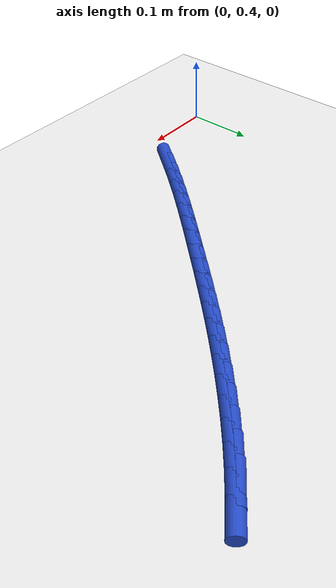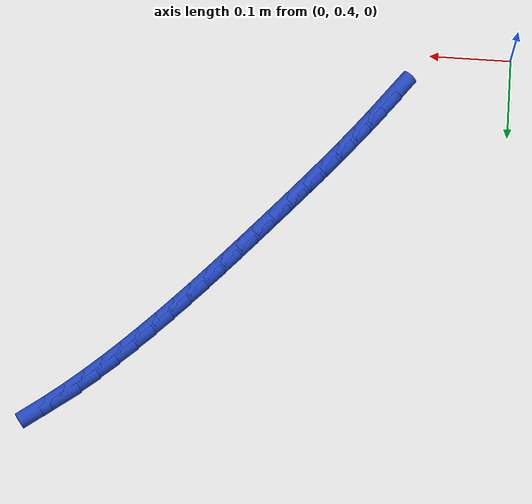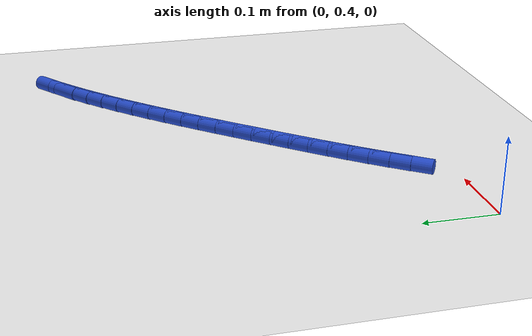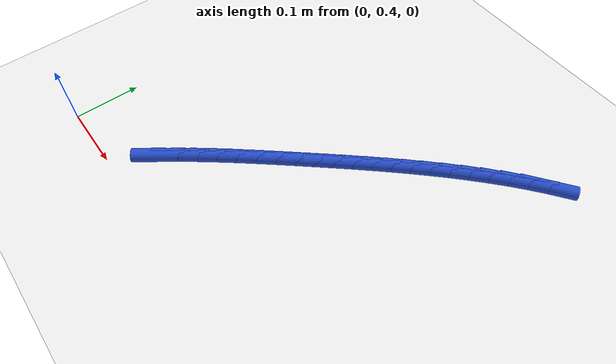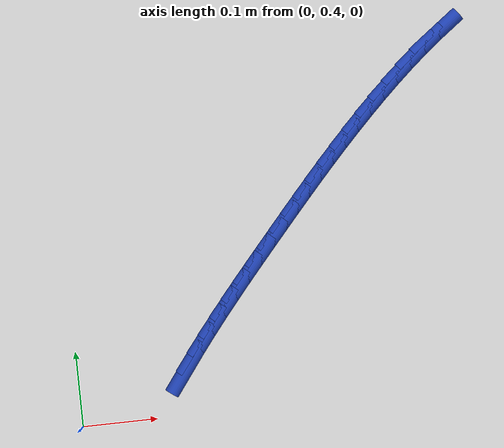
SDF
<sdf version="1.6">
 <world name="default">
  <model name="ground_plane">
   <static>1</static>
   <link name="link">
    <collision name="collision">
     <geometry><plane><normal>0 0 1</normal><size>100 100</size></plane></geometry>
     <surface><friction><ode><mu>100</mu><mu2>50</mu2></ode></friction></surface>
    </collision>
    <visual name="visual">
     <cast_shadows>0</cast_shadows>
     <geometry><plane><normal>0 0 1</normal><size>100 100</size></plane></geometry>
     <material>
      <script><uri>file://media/materials/scripts/gazebo.material</uri><name>Gazebo/WhiteGlow</name></script>
     </material>
    </visual>
   </link>
  </model>
  <model name="line">
   <link name="link_18">
    <pose>0.14657801516946348 0.4642527510648569 0.01 0 1.57 0.9306011984447259</pose>
    <collision name="collision">
     <geometry><cylinder><radius>0.01</radius><length>0.08</length></cylinder></geometry>
    </collision>
    <visual name="visual">
     <material>
      <script><name>Gazebo/Blue</name><uri>file://media/materials/scripts/gazebo.material</uri></script>
     </material>
     <geometry><cylinder><radius>0.01</radius><length>0.08</length></cylinder></geometry>
    </visual>
   </link>
   <link name="link_19">
    <pose>0.1633071607113373 0.4867125876180554 0.01 0 1.57 0.9112471377221855</pose>
    <collision name="collision">
     <geometry><cylinder><radius>0.01</radius><length>0.08</length></cylinder></geometry>
    </collision>
    <visual name="visual">
     <material>
      <script><name>Gazebo/Blue</name><uri>file://media/materials/scripts/gazebo.material</uri></script>
     </material>
     <geometry><cylinder><radius>0.01</radius><length>0.08</length></cylinder></geometry>
    </visual>
   </link>
   <link name="link_20">
    <pose>0.18050817503354735 0.5088964870040931 0.01 0 1.57 0.8946972336841649</pose>
    <collision name="collision">
     <geometry><cylinder><radius>0.01</radius><length>0.08</length></cylinder></geometry>
    </collision>
    <visual name="visual">
     <material>
      <script><name>Gazebo/Blue</name><uri>file://media/materials/scripts/gazebo.material</uri></script>
     </material>
     <geometry><cylinder><radius>0.01</radius><length>0.08</length></cylinder></geometry>
    </visual>
   </link>
   <link name="link_21">
    <pose>0.19809969475001146 0.530824767282341 0.01 0 1.57 0.8808878413360367</pose>
    <collision name="collision">
     <geometry><cylinder><radius>0.01</radius><length>0.08</length></cylinder></geometry>
    </collision>
    <visual name="visual">
     <material>
      <script><name>Gazebo/Blue</name><uri>file://media/materials/scripts/gazebo.material</uri></script>
     </material>
     <geometry><cylinder><radius>0.01</radius><length>0.08</length></cylinder></geometry>
    </visual>
   </link>
   <link name="link_22">
    <pose>0.21600035647464755 0.5525177465121708 0.01 0 1.57 0.8697683984491581</pose>
    <collision name="collision">
     <geometry><cylinder><radius>0.01</radius><length>0.08</length></cylinder></geometry>
    </collision>
    <visual name="visual">
     <material>
      <script><name>Gazebo/Blue</name><uri>file://media/materials/scripts/gazebo.material</uri></script>
     </material>
     <geometry><cylinder><radius>0.01</radius><length>0.08</length></cylinder></geometry>
    </visual>
   </link>
   <link name="link_23">
    <pose>0.23412879682137389 0.5739957427529544 0.01 0 1.57 0.8613039562555125</pose>
    <collision name="collision">
     <geometry><cylinder><radius>0.01</radius><length>0.08</length></cylinder></geometry>
    </collision>
    <visual name="visual">
     <material>
      <script><name>Gazebo/Blue</name><uri>file://media/materials/scripts/gazebo.material</uri></script>
     </material>
     <geometry><cylinder><radius>0.01</radius><length>0.08</length></cylinder></geometry>
    </visual>
   </link>
   <link name="link_24">
    <pose>0.2524036524041083 0.5952790740640631 0.01 0 1.57 0.8554772540911887</pose>
    <collision name="collision">
     <geometry><cylinder><radius>0.01</radius><length>0.08</length></cylinder></geometry>
    </collision>
    <visual name="visual">
     <material>
      <script><name>Gazebo/Blue</name><uri>file://media/materials/scripts/gazebo.material</uri></script>
     </material>
     <geometry><cylinder><radius>0.01</radius><length>0.08</length></cylinder></geometry>
    </visual>
   </link>
   <link name="link_25">
    <pose>0.2707435598367689 0.616388058504869 0.01 0 1.57 0.8521937747427385</pose>
    <collision name="collision">
     <geometry><cylinder><radius>0.01</radius><length>0.08</length></cylinder></geometry>
    </collision>
    <visual name="visual">
     <material>
      <script><name>Gazebo/Blue</name><uri>file://media/materials/scripts/gazebo.material</uri></script>
     </material>
     <geometry><cylinder><radius>0.01</radius><length>0.08</length></cylinder></geometry>
    </visual>
   </link>
   <link name="link_26">
    <pose>0.2890701103326086 0.6373423028204352 0.01 0 1.57 0.8492410949826225</pose>
    <collision name="collision">
     <geometry><cylinder><radius>0.01</radius><length>0.08</length></cylinder></geometry>
    </collision>
    <visual name="visual">
     <material>
      <script><name>Gazebo/Blue</name><uri>file://media/materials/scripts/gazebo.material</uri></script>
     </material>
     <geometry><cylinder><radius>0.01</radius><length>0.08</length></cylinder></geometry>
    </visual>
   </link>
   <link name="link_27">
    <pose>0.30737285353726645 0.6581450528893269 0.01 0 1.57 0.8443859554230504</pose>
    <collision name="collision">
     <geometry><cylinder><radius>0.01</radius><length>0.08</length></cylinder></geometry>
    </collision>
    <visual name="visual">
     <material>
      <script><name>Gazebo/Blue</name><uri>file://media/materials/scripts/gazebo.material</uri></script>
     </material>
     <geometry><cylinder><radius>0.01</radius><length>0.08</length></cylinder></geometry>
    </visual>
   </link>
   <link name="link_28">
    <pose>0.3257092989997319 0.6787831933694779 0.01 0 1.57 0.837525633527093</pose>
    <collision name="collision">
     <geometry><cylinder><radius>0.01</radius><length>0.08</length></cylinder></geometry>
    </collision>
    <visual name="visual">
     <material>
      <script><name>Gazebo/Blue</name><uri>file://media/materials/scripts/gazebo.material</uri></script>
     </material>
     <geometry><cylinder><radius>0.01</radius><length>0.08</length></cylinder></geometry>
    </visual>
   </link>
   <link name="link_29">
    <pose>0.3441399111625224 0.6992428975336877 0.01 0 1.57 0.8286679622097102</pose>
    <collision name="collision">
     <geometry><cylinder><radius>0.01</radius><length>0.08</length></cylinder></geometry>
    </collision>
    <visual name="visual">
     <material>
      <script><name>Gazebo/Blue</name><uri>file://media/materials/scripts/gazebo.material</uri></script>
     </material>
     <geometry><cylinder><radius>0.01</radius><length>0.08</length></cylinder></geometry>
    </visual>
   </link>
   <link name="link_30">
    <pose>0.36272515446815506 0.7195103386547561 0.01 0 1.57 0.817835511066305</pose>
    <collision name="collision">
     <geometry><cylinder><radius>0.01</radius><length>0.08</length></cylinder></geometry>
    </collision>
    <visual name="visual">
     <material>
      <script><name>Gazebo/Blue</name><uri>file://media/materials/scripts/gazebo.material</uri></script>
     </material>
     <geometry><cylinder><radius>0.01</radius><length>0.08</length></cylinder></geometry>
    </visual>
   </link>
   <link name="link_31">
    <pose>0.3815254933591474 0.7395716900054821 0.01 0 1.57 0.8050664485522597</pose>
    <collision name="collision">
     <geometry><cylinder><radius>0.01</radius><length>0.08</length></cylinder></geometry>
    </collision>
    <visual name="visual">
     <material>
      <script><name>Gazebo/Blue</name><uri>file://media/materials/scripts/gazebo.material</uri></script>
     </material>
     <geometry><cylinder><radius>0.01</radius><length>0.08</length></cylinder></geometry>
    </visual>
   </link>
   <link name="link_32">
    <pose>0.400601392278017 0.7594131248586659 0.01 0 1.57 0.7904152963569561</pose>
    <collision name="collision">
     <geometry><cylinder><radius>0.01</radius><length>0.08</length></cylinder></geometry>
    </collision>
    <visual name="visual">
     <material>
      <script><name>Gazebo/Blue</name><uri>file://media/materials/scripts/gazebo.material</uri></script>
     </material>
     <geometry><cylinder><radius>0.01</radius><length>0.08</length></cylinder></geometry>
    </visual>
   </link>
   <link name="link_33">
    <pose>0.42001331566728095 0.7790208164871066 0.01 0 1.57 0.7737581388340069</pose>
    <collision name="collision">
     <geometry><cylinder><radius>0.01</radius><length>0.08</length></cylinder></geometry>
    </collision>
    <visual name="visual">
     <material>
      <script><name>Gazebo/Blue</name><uri>file://media/materials/scripts/gazebo.material</uri></script>
     </material>
     <geometry><cylinder><radius>0.01</radius><length>0.08</length></cylinder></geometry>
    </visual>
   </link>
   <link name="link_34">
    <pose>0.43981696849531143 0.7983687236123765 0.01 0 1.57 0.7541543347570773</pose>
    <collision name="collision">
     <geometry><cylinder><radius>0.01</radius><length>0.08</length></cylinder></geometry>
    </collision>
    <visual name="visual">
     <material>
      <script><name>Gazebo/Blue</name><uri>file://media/materials/scripts/gazebo.material</uri></script>
     </material>
     <geometry><cylinder><radius>0.01</radius><length>0.08</length></cylinder></geometry>
    </visual>
   </link>
   <link name="link_35">
    <pose>0.4600444014446152 0.8173700994079949 0.01 0 1.57 0.731234655228262</pose>
    <collision name="collision">
     <geometry><cylinder><radius>0.01</radius><length>0.08</length></cylinder></geometry>
    </collision>
    <visual name="visual">
     <material>
      <script><name>Gazebo/Blue</name><uri>file://media/materials/scripts/gazebo.material</uri></script>
     </material>
     <geometry><cylinder><radius>0.01</radius><length>0.08</length></cylinder></geometry>
    </visual>
   </link>
   <link name="link_36">
    <pose>0.4807203306520186 0.8359193739209727 0.01 0 1.57 0.7049009868577691</pose>
    <collision name="collision">
     <geometry><cylinder><radius>0.01</radius><length>0.08</length></cylinder></geometry>
    </collision>
    <visual name="visual">
     <material>
      <script><name>Gazebo/Blue</name><uri>file://media/materials/scripts/gazebo.material</uri></script>
     </material>
     <geometry><cylinder><radius>0.01</radius><length>0.08</length></cylinder></geometry>
    </visual>
   </link>
   <link name="link_37">
    <pose>0.5018694700160675 0.8539109714540767 0.01 0 1.57 0.6750421024260883</pose>
    <collision name="collision">
     <geometry><cylinder><radius>0.01</radius><length>0.08</length></cylinder></geometry>
    </collision>
    <visual name="visual">
     <material>
      <script><name>Gazebo/Blue</name><uri>file://media/materials/scripts/gazebo.material</uri></script>
     </material>
     <geometry><cylinder><radius>0.01</radius><length>0.08</length></cylinder></geometry>
    </visual>
   </link>
   <link name="link_38">
    <pose>0.5235165334353089 0.8712393163100739 0.01 0 1.57 0.6415421392414047</pose>
    <collision name="collision">
     <geometry><cylinder><radius>0.01</radius><length>0.08</length></cylinder></geometry>
    </collision>
    <visual name="visual">
     <material>
      <script><name>Gazebo/Blue</name><uri>file://media/materials/scripts/gazebo.material</uri></script>
     </material>
     <geometry><cylinder><radius>0.01</radius><length>0.08</length></cylinder></geometry>
    </visual>
   </link>
  </model>
 </world>
</sdf>
